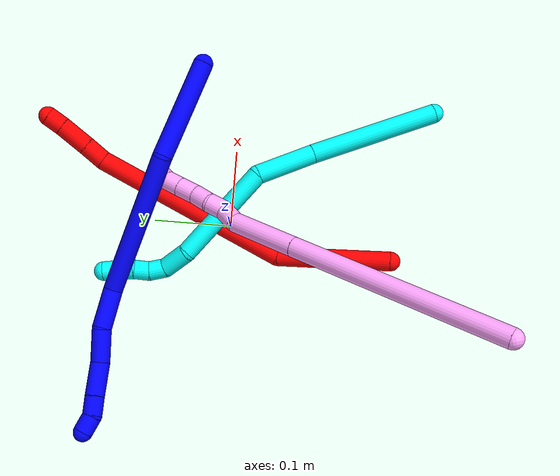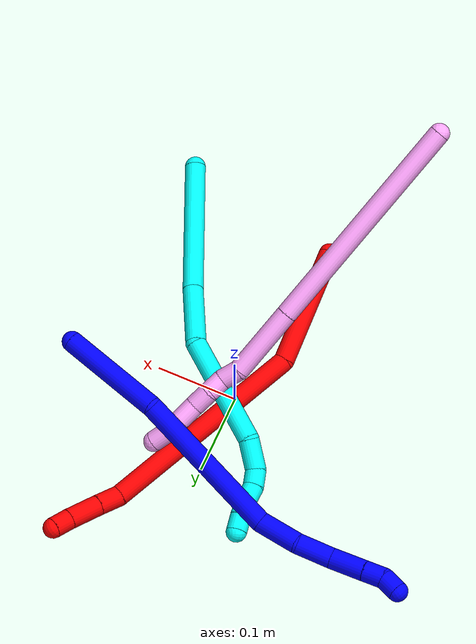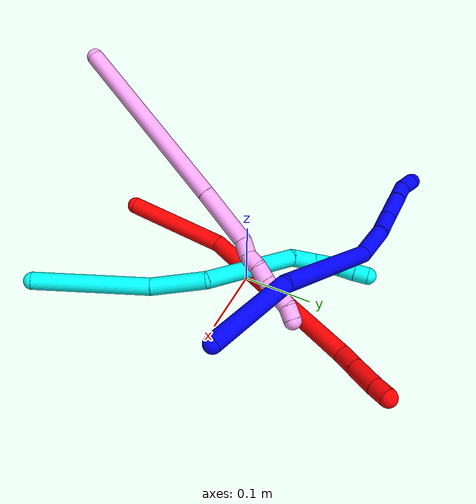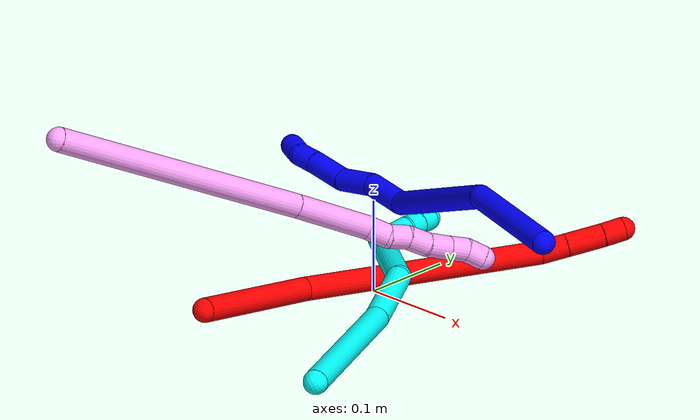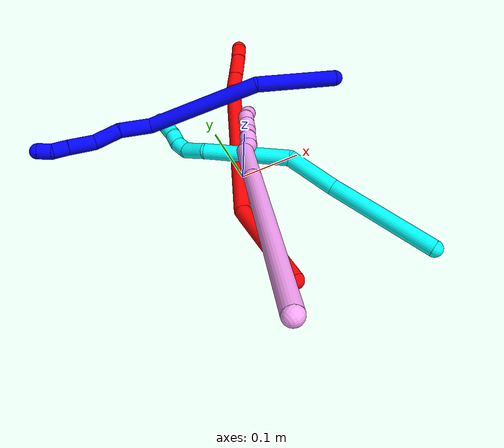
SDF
<sdf version="1.7">
 <world name="default">
  <plugin name="TubeGeneratorPlugin" filename="libtube_generator_plugin.so"/>
  <model name="photoneo_s_sensor">
   <static>1</static>
   <pose>0 0 2 1.57079 1.57079 3.14159</pose>
   <link name="link">
    <inertial><mass>0.1</mass></inertial>
    <sensor name="sensor" type="depth">
     <update_rate>30</update_rate>
     <camera>
      <horizontal_fov>1.22</horizontal_fov>
      <image><width>1920</width><height>1200</height><format>B8G8R8</format></image>
      <clip><near>0.1</near><far>4</far></clip>
      <depth_camera><output>points</output></depth_camera>
     </camera>
     <plugin name="camera_plugin" filename="libgazebo_ros_depth_camera.so">
      <baseline>0.2</baseline>
      <alwaysOn>1</alwaysOn>
      <updateRate>0.0</updateRate>
      <cameraName>camera_ir</cameraName>
      <imageTopicName>/camera/color/image_raw</imageTopicName>
      <cameraInfoTopicName>/camera/color/camera_info</cameraInfoTopicName>
      <depthImageTopicName>/camera/depth/image_raw</depthImageTopicName>
      <depthImageCameraInfoTopicName>/camera/depth/camera_info</depthImageCameraInfoTopicName>
      <pointCloudTopicName>/camera/depth/points</pointCloudTopicName>
      <frameName>fr_optical</frameName>
      <pointCloudCutoff>0.1</pointCloudCutoff>
      <pointCloudCutoffMax>2.0</pointCloudCutoffMax>
      <distortionK1>0</distortionK1>
      <distortionK2>0</distortionK2>
      <distortionK3>0</distortionK3>
      <distortionT1>0</distortionT1>
      <distortionT2>0</distortionT2>
      <CxPrime>0</CxPrime>
      <Cx>0</Cx>
      <Cy>0</Cy>
      <focalLength>0</focalLength>
      <hackBaseline>0</hackBaseline>
     </plugin>
    </sensor>
   </link>
  </model>
  <gravity>0 0 -9.8</gravity>
  <magnetic_field>6e-06 2.3e-05 -4.2e-05</magnetic_field>
  <atmosphere type="adiabatic"/>
  <physics name="default_physics" default="0" type="ode">
   <max_step_size>0.003</max_step_size>
   <real_time_factor>1</real_time_factor>
   <real_time_update_rate>1000</real_time_update_rate>
   <max_contacts>10000</max_contacts>
   <ode>
    <solver>
     <type>quick</type>
     <iters>100</iters>
     <sor>1.3</sor>
     <use_dynamic_moi_rescaling>0</use_dynamic_moi_rescaling>
    </solver>
    <constraints>
     <contact_max_correcting_vel>0</contact_max_correcting_vel>
     <contact_surface_layer>0.001</contact_surface_layer>
     <cfm>0</cfm>
     <erp>0.2</erp>
    </constraints>
   </ode>
  </physics>
  <scene><ambient>0.4 0.4 0.4 1</ambient><background>0.7 0.7 0.7 1</background><shadows>0</shadows></scene>
  <audio><device>default</device></audio>
  <spherical_coordinates>
   <surface_model>EARTH_WGS84</surface_model>
   <latitude_deg>0</latitude_deg>
   <longitude_deg>0</longitude_deg>
   <elevation>0</elevation>
   <heading_deg>0</heading_deg>
  </spherical_coordinates>
  <model name="bin">
   <static>1</static>
   <link name="bottom">
    <collision name="collision-bottom">
     <pose>0 0 -0.01 0 -0 0</pose>
     <geometry><box><size>0.8 0.6 0.02</size></box></geometry>
     <surface>
      <friction><ode><mu>100</mu><mu2>100</mu2></ode></friction>
      <contact><collide_bitmask>65535</collide_bitmask></contact>
     </surface>
    </collision>
   </link>
   <link name="west_wall">
    <collision name="collision-west_wall">
     <pose>-0.41 0 0.1 0 -0 0</pose>
     <geometry><box><size>0.02 0.6 0.2</size></box></geometry>
     <surface>
      <friction><ode><mu>100</mu><mu2>100</mu2></ode></friction>
      <contact><collide_bitmask>65535</collide_bitmask></contact>
     </surface>
    </collision>
   </link>
   <link name="east_wall">
    <collision name="collision-east_wall">
     <pose>0.41 0 0.1 0 -0 0</pose>
     <geometry><box><size>0.02 0.6 0.2</size></box></geometry>
     <surface>
      <friction><ode><mu>100</mu><mu2>100</mu2></ode></friction>
      <contact><collide_bitmask>65535</collide_bitmask></contact>
     </surface>
    </collision>
   </link>
   <link name="south_wall">
    <collision name="collision-south_wall">
     <pose>0 -0.31 0.1 0 -0 0</pose>
     <geometry><box><size>0.8 0.02 0.2</size></box></geometry>
     <surface>
      <friction><ode><mu>100</mu><mu2>100</mu2></ode></friction>
      <contact><collide_bitmask>65535</collide_bitmask></contact>
     </surface>
    </collision>
   </link>
   <link name="north_wall">
    <collision name="collision-north_wall">
     <pose>0 0.31 0.1 0 -0 0</pose>
     <geometry><box><size>0.8 0.02 0.2</size></box></geometry>
     <surface>
      <friction><ode><mu>100</mu><mu2>100</mu2></ode></friction>
      <contact><collide_bitmask>65535</collide_bitmask></contact>
     </surface>
    </collision>
   </link>
  </model>
  <model name="1">
   <static>0</static>
   <link name="1">
    <collision name="collision-cylinder-e_1_1_4">
     <pose>0.014006 0.039637 0.047901 -0.691278 0.221575 -0.080073</pose>
     <geometry><cylinder><radius>0.0125</radius><length>0.127465</length></cylinder></geometry>
     <surface>
      <friction><ode><mu>1.16</mu><mu2>1.16</mu2><slip1>0</slip1><slip2>0</slip2></ode></friction>
      <contact><ode><kp>1e+06</kp><kd>1</kd><max_vel>0</max_vel><min_depth>0.001</min_depth></ode></contact>
     </surface>
    </collision>
    <visual name="visual-cylinder-e_1_1_4">
     <pose>0.014006 0.039637 0.047901 -0.691278 0.221575 -0.080073</pose>
     <geometry><cylinder><radius>0.0125</radius><length>0.127465</length></cylinder></geometry>
     <material><ambient>0 0 1 1</ambient></material>
    </visual>
    <collision name="collision-cylinder-e_2_4_5">
     <pose>0.036307 0.106312 0.184655 -0.29539 0.089075 -0.013261</pose>
     <geometry><cylinder><radius>0.0125</radius><length>0.186491</length></cylinder></geometry>
     <surface>
      <friction><ode><mu>1.16</mu><mu2>1.16</mu2><slip1>0</slip1><slip2>0</slip2></ode></friction>
      <contact><ode><kp>1e+06</kp><kd>1</kd><max_vel>0</max_vel><min_depth>0.001</min_depth></ode></contact>
     </surface>
    </collision>
    <visual name="visual-cylinder-e_2_4_5">
     <pose>0.036307 0.106312 0.184655 -0.29539 0.089075 -0.013261</pose>
     <geometry><cylinder><radius>0.0125</radius><length>0.186491</length></cylinder></geometry>
     <material><ambient>0 0 1 1</ambient></material>
    </visual>
    <collision name="collision-cylinder-e_3_5_6">
     <pose>0.053965 0.149106 0.29185 -0.709753 0.369445 -0.138261</pose>
     <geometry><cylinder><radius>0.0125</radius><length>0.051859</length></cylinder></geometry>
     <surface>
      <friction><ode><mu>1.16</mu><mu2>1.16</mu2><slip1>0</slip1><slip2>0</slip2></ode></friction>
      <contact><ode><kp>1e+06</kp><kd>1</kd><max_vel>0</max_vel><min_depth>0.001</min_depth></ode></contact>
     </surface>
    </collision>
    <visual name="visual-cylinder-e_3_5_6">
     <pose>0.053965 0.149106 0.29185 -0.709753 0.369445 -0.138261</pose>
     <geometry><cylinder><radius>0.0125</radius><length>0.051859</length></cylinder></geometry>
     <material><ambient>0 0 1 1</ambient></material>
    </visual>
    <collision name="collision-cylinder-e_4_6_7">
     <pose>0.073806 0.172594 0.327675 -0.416336 0.501386 -0.108077</pose>
     <geometry><cylinder><radius>0.0125</radius><length>0.043601</length></cylinder></geometry>
     <surface>
      <friction><ode><mu>1.16</mu><mu2>1.16</mu2><slip1>0</slip1><slip2>0</slip2></ode></friction>
      <contact><ode><kp>1e+06</kp><kd>1</kd><max_vel>0</max_vel><min_depth>0.001</min_depth></ode></contact>
     </surface>
    </collision>
    <visual name="visual-cylinder-e_4_6_7">
     <pose>0.073806 0.172594 0.327675 -0.416336 0.501386 -0.108077</pose>
     <geometry><cylinder><radius>0.0125</radius><length>0.043601</length></cylinder></geometry>
     <material><ambient>0 0 1 1</ambient></material>
    </visual>
    <collision name="collision-cylinder-e_5_7_8">
     <pose>0.095123 0.193445 0.358667 -0.770816 0.522257 -0.215985</pose>
     <geometry><cylinder><radius>0.0125</radius><length>0.043454</length></cylinder></geometry>
     <surface>
      <friction><ode><mu>1.16</mu><mu2>1.16</mu2><slip1>0</slip1><slip2>0</slip2></ode></friction>
      <contact><ode><kp>1e+06</kp><kd>1</kd><max_vel>0</max_vel><min_depth>0.001</min_depth></ode></contact>
     </surface>
    </collision>
    <visual name="visual-cylinder-e_5_7_8">
     <pose>0.095123 0.193445 0.358667 -0.770816 0.522257 -0.215985</pose>
     <geometry><cylinder><radius>0.0125</radius><length>0.043454</length></cylinder></geometry>
     <material><ambient>0 0 1 1</ambient></material>
    </visual>
    <collision name="collision-cylinder-e_6_8_9">
     <pose>0.112228 0.21343 0.380219 -0.706518 0.535 -0.201429</pose>
     <geometry><cylinder><radius>0.0125</radius><length>0.024583</length></cylinder></geometry>
     <surface>
      <friction><ode><mu>1.16</mu><mu2>1.16</mu2><slip1>0</slip1><slip2>0</slip2></ode></friction>
      <contact><ode><kp>1e+06</kp><kd>1</kd><max_vel>0</max_vel><min_depth>0.001</min_depth></ode></contact>
     </surface>
    </collision>
    <visual name="visual-cylinder-e_6_8_9">
     <pose>0.112228 0.21343 0.380219 -0.706518 0.535 -0.201429</pose>
     <geometry><cylinder><radius>0.0125</radius><length>0.024583</length></cylinder></geometry>
     <material><ambient>0 0 1 1</ambient></material>
    </visual>
    <collision name="collision-cylinder-e_7_9_2">
     <pose>0.119942 0.228078 0.396287 -0.770072 0.128689 -0.052213</pose>
     <geometry><cylinder><radius>0.0125</radius><length>0.022547</length></cylinder></geometry>
     <surface>
      <friction><ode><mu>1.16</mu><mu2>1.16</mu2><slip1>0</slip1><slip2>0</slip2></ode></friction>
      <contact><ode><kp>1e+06</kp><kd>1</kd><max_vel>0</max_vel><min_depth>0.001</min_depth></ode></contact>
     </surface>
    </collision>
    <visual name="visual-cylinder-e_7_9_2">
     <pose>0.119942 0.228078 0.396287 -0.770072 0.128689 -0.052213</pose>
     <geometry><cylinder><radius>0.0125</radius><length>0.022547</length></cylinder></geometry>
     <material><ambient>0 0 1 1</ambient></material>
    </visual>
    <collision name="collision-sphere-2">
     <pose>0.121388 0.235861 0.404313 0 -0 0</pose>
     <geometry><sphere><radius>0.0125</radius></sphere></geometry>
     <surface>
      <friction><ode><mu>1.16</mu><mu2>1.16</mu2><slip1>0</slip1><slip2>0</slip2></ode></friction>
      <contact><ode><kp>1e+06</kp><kd>1</kd><max_vel>0</max_vel><min_depth>0.001</min_depth></ode></contact>
     </surface>
    </collision>
    <visual name="visual-sphere-2">
     <pose>0.121388 0.235861 0.404313 0 -0 0</pose>
     <geometry><sphere><radius>0.0125</radius></sphere></geometry>
     <material><ambient>0 0 1 1</ambient></material>
    </visual>
    <collision name="collision-sphere-9">
     <pose>0.118495 0.220294 0.388261 0 -0 0</pose>
     <geometry><sphere><radius>0.0125</radius></sphere></geometry>
     <surface>
      <friction><ode><mu>1.16</mu><mu2>1.16</mu2><slip1>0</slip1><slip2>0</slip2></ode></friction>
      <contact><ode><kp>1e+06</kp><kd>1</kd><max_vel>0</max_vel><min_depth>0.001</min_depth></ode></contact>
     </surface>
    </collision>
    <visual name="visual-sphere-9">
     <pose>0.118495 0.220294 0.388261 0 -0 0</pose>
     <geometry><sphere><radius>0.0125</radius></sphere></geometry>
     <material><ambient>0 0 1 1</ambient></material>
    </visual>
    <collision name="collision-sphere-4">
     <pose>0.028012 0.079275 0.095802 0 -0 0</pose>
     <geometry><sphere><radius>0.0125</radius></sphere></geometry>
     <surface>
      <friction><ode><mu>1.16</mu><mu2>1.16</mu2><slip1>0</slip1><slip2>0</slip2></ode></friction>
      <contact><ode><kp>1e+06</kp><kd>1</kd><max_vel>0</max_vel><min_depth>0.001</min_depth></ode></contact>
     </surface>
    </collision>
    <visual name="visual-sphere-4">
     <pose>0.028012 0.079275 0.095802 0 -0 0</pose>
     <geometry><sphere><radius>0.0125</radius></sphere></geometry>
     <material><ambient>0 0 1 1</ambient></material>
    </visual>
    <collision name="collision-sphere-1">
     <geometry><sphere><radius>0.0125</radius></sphere></geometry>
     <surface>
      <friction><ode><mu>1.16</mu><mu2>1.16</mu2><slip1>0</slip1><slip2>0</slip2></ode></friction>
      <contact><ode><kp>1e+06</kp><kd>1</kd><max_vel>0</max_vel><min_depth>0.001</min_depth></ode></contact>
     </surface>
    </collision>
    <visual name="visual-sphere-1">
     <geometry><sphere><radius>0.0125</radius></sphere></geometry>
     <material><ambient>0 0 1 1</ambient></material>
    </visual>
    <collision name="collision-sphere-8">
     <pose>0.105961 0.206565 0.372176 0 -0 0</pose>
     <geometry><sphere><radius>0.0125</radius></sphere></geometry>
     <surface>
      <friction><ode><mu>1.16</mu><mu2>1.16</mu2><slip1>0</slip1><slip2>0</slip2></ode></friction>
      <contact><ode><kp>1e+06</kp><kd>1</kd><max_vel>0</max_vel><min_depth>0.001</min_depth></ode></contact>
     </surface>
    </collision>
    <visual name="visual-sphere-8">
     <pose>0.105961 0.206565 0.372176 0 -0 0</pose>
     <geometry><sphere><radius>0.0125</radius></sphere></geometry>
     <material><ambient>0 0 1 1</ambient></material>
    </visual>
    <collision name="collision-sphere-5">
     <pose>0.044602 0.13335 0.273509 0 -0 0</pose>
     <geometry><sphere><radius>0.0125</radius></sphere></geometry>
     <surface>
      <friction><ode><mu>1.16</mu><mu2>1.16</mu2><slip1>0</slip1><slip2>0</slip2></ode></friction>
      <contact><ode><kp>1e+06</kp><kd>1</kd><max_vel>0</max_vel><min_depth>0.001</min_depth></ode></contact>
     </surface>
    </collision>
    <visual name="visual-sphere-5">
     <pose>0.044602 0.13335 0.273509 0 -0 0</pose>
     <geometry><sphere><radius>0.0125</radius></sphere></geometry>
     <material><ambient>0 0 1 1</ambient></material>
    </visual>
    <collision name="collision-sphere-6">
     <pose>0.063328 0.164863 0.310191 0 -0 0</pose>
     <geometry><sphere><radius>0.0125</radius></sphere></geometry>
     <surface>
      <friction><ode><mu>1.16</mu><mu2>1.16</mu2><slip1>0</slip1><slip2>0</slip2></ode></friction>
      <contact><ode><kp>1e+06</kp><kd>1</kd><max_vel>0</max_vel><min_depth>0.001</min_depth></ode></contact>
     </surface>
    </collision>
    <visual name="visual-sphere-6">
     <pose>0.063328 0.164863 0.310191 0 -0 0</pose>
     <geometry><sphere><radius>0.0125</radius></sphere></geometry>
     <material><ambient>0 0 1 1</ambient></material>
    </visual>
    <collision name="collision-sphere-7">
     <pose>0.084285 0.180326 0.345159 0 -0 0</pose>
     <geometry><sphere><radius>0.0125</radius></sphere></geometry>
     <surface>
      <friction><ode><mu>1.16</mu><mu2>1.16</mu2><slip1>0</slip1><slip2>0</slip2></ode></friction>
      <contact><ode><kp>1e+06</kp><kd>1</kd><max_vel>0</max_vel><min_depth>0.001</min_depth></ode></contact>
     </surface>
    </collision>
    <visual name="visual-sphere-7">
     <pose>0.084285 0.180326 0.345159 0 -0 0</pose>
     <geometry><sphere><radius>0.0125</radius></sphere></geometry>
     <material><ambient>0 0 1 1</ambient></material>
    </visual>
    <inertial>
     <pose>0.048339 0.117863 0.207664 0 -0 0</pose>
     <mass>0.5</mass>
     <inertia>
      <ixx>0.000733</ixx>
      <ixy>0</ixy>
      <ixz>0</ixz>
      <iyy>0.000684</iyy>
      <iyz>0</iyz>
      <izz>-0.000359</izz>
     </inertia>
    </inertial>
   </link>
   <pose>0.188513 0.047594 0.094356 2.29123 -0.262298 -2.10623</pose>
  </model>
  <model name="2">
   <static>0</static>
   <link name="2">
    <collision name="collision-cylinder-e_1_1_4">
     <pose>0.042387 0.040597 0.043641 -0.749277 0.61816 -0.249807</pose>
     <geometry><cylinder><radius>0.0125</radius><length>0.146277</length></cylinder></geometry>
     <surface>
      <friction><ode><mu>1.16</mu><mu2>1.16</mu2><slip1>0</slip1><slip2>0</slip2></ode></friction>
      <contact><ode><kp>1e+06</kp><kd>1</kd><max_vel>0</max_vel><min_depth>0.001</min_depth></ode></contact>
     </surface>
    </collision>
    <visual name="visual-cylinder-e_1_1_4">
     <pose>0.042387 0.040597 0.043641 -0.749277 0.61816 -0.249807</pose>
     <geometry><cylinder><radius>0.0125</radius><length>0.146277</length></cylinder></geometry>
     <material><ambient>1 0 0 1</ambient></material>
    </visual>
    <collision name="collision-cylinder-e_2_4_5">
     <pose>0.104029 0.167576 0.183945 -0.729294 0.147461 -0.056376</pose>
     <geometry><cylinder><radius>0.0125</radius><length>0.262119</length></cylinder></geometry>
     <surface>
      <friction><ode><mu>1.16</mu><mu2>1.16</mu2><slip1>0</slip1><slip2>0</slip2></ode></friction>
      <contact><ode><kp>1e+06</kp><kd>1</kd><max_vel>0</max_vel><min_depth>0.001</min_depth></ode></contact>
     </surface>
    </collision>
    <visual name="visual-cylinder-e_2_4_5">
     <pose>0.104029 0.167576 0.183945 -0.729294 0.147461 -0.056376</pose>
     <geometry><cylinder><radius>0.0125</radius><length>0.262119</length></cylinder></geometry>
     <material><ambient>1 0 0 1</ambient></material>
    </visual>
    <collision name="collision-cylinder-e_3_5_6">
     <pose>0.121722 0.264927 0.290112 -0.856842 -0.107319 0.049051</pose>
     <geometry><cylinder><radius>0.0125</radius><length>0.029193</length></cylinder></geometry>
     <surface>
      <friction><ode><mu>1.16</mu><mu2>1.16</mu2><slip1>0</slip1><slip2>0</slip2></ode></friction>
      <contact><ode><kp>1e+06</kp><kd>1</kd><max_vel>0</max_vel><min_depth>0.001</min_depth></ode></contact>
     </surface>
    </collision>
    <visual name="visual-cylinder-e_3_5_6">
     <pose>0.121722 0.264927 0.290112 -0.856842 -0.107319 0.049051</pose>
     <geometry><cylinder><radius>0.0125</radius><length>0.029193</length></cylinder></geometry>
     <material><ambient>1 0 0 1</ambient></material>
    </visual>
    <collision name="collision-cylinder-e_4_6_7">
     <pose>0.118457 0.290892 0.312572 -0.858223 -0.085655 0.03921</pose>
     <geometry><cylinder><radius>0.0125</radius><length>0.039782</length></cylinder></geometry>
     <surface>
      <friction><ode><mu>1.16</mu><mu2>1.16</mu2><slip1>0</slip1><slip2>0</slip2></ode></friction>
      <contact><ode><kp>1e+06</kp><kd>1</kd><max_vel>0</max_vel><min_depth>0.001</min_depth></ode></contact>
     </surface>
    </collision>
    <visual name="visual-cylinder-e_4_6_7">
     <pose>0.118457 0.290892 0.312572 -0.858223 -0.085655 0.03921</pose>
     <geometry><cylinder><radius>0.0125</radius><length>0.039782</length></cylinder></geometry>
     <material><ambient>1 0 0 1</ambient></material>
    </visual>
    <collision name="collision-cylinder-e_5_7_2">
     <pose>0.11642 0.314682 0.332639 -0.890849 -0.029585 0.014125</pose>
     <geometry><cylinder><radius>0.0125</radius><length>0.022629</length></cylinder></geometry>
     <surface>
      <friction><ode><mu>1.16</mu><mu2>1.16</mu2><slip1>0</slip1><slip2>0</slip2></ode></friction>
      <contact><ode><kp>1e+06</kp><kd>1</kd><max_vel>0</max_vel><min_depth>0.001</min_depth></ode></contact>
     </surface>
    </collision>
    <visual name="visual-cylinder-e_5_7_2">
     <pose>0.11642 0.314682 0.332639 -0.890849 -0.029585 0.014125</pose>
     <geometry><cylinder><radius>0.0125</radius><length>0.022629</length></cylinder></geometry>
     <material><ambient>1 0 0 1</ambient></material>
    </visual>
    <collision name="collision-sphere-2">
     <pose>0.116086 0.323476 0.33975 0 -0 0</pose>
     <geometry><sphere><radius>0.0125</radius></sphere></geometry>
     <surface>
      <friction><ode><mu>1.16</mu><mu2>1.16</mu2><slip1>0</slip1><slip2>0</slip2></ode></friction>
      <contact><ode><kp>1e+06</kp><kd>1</kd><max_vel>0</max_vel><min_depth>0.001</min_depth></ode></contact>
     </surface>
    </collision>
    <visual name="visual-sphere-2">
     <pose>0.116086 0.323476 0.33975 0 -0 0</pose>
     <geometry><sphere><radius>0.0125</radius></sphere></geometry>
     <material><ambient>1 0 0 1</ambient></material>
    </visual>
    <collision name="collision-sphere-7">
     <pose>0.116755 0.305888 0.325528 0 -0 0</pose>
     <geometry><sphere><radius>0.0125</radius></sphere></geometry>
     <surface>
      <friction><ode><mu>1.16</mu><mu2>1.16</mu2><slip1>0</slip1><slip2>0</slip2></ode></friction>
      <contact><ode><kp>1e+06</kp><kd>1</kd><max_vel>0</max_vel><min_depth>0.001</min_depth></ode></contact>
     </surface>
    </collision>
    <visual name="visual-sphere-7">
     <pose>0.116755 0.305888 0.325528 0 -0 0</pose>
     <geometry><sphere><radius>0.0125</radius></sphere></geometry>
     <material><ambient>1 0 0 1</ambient></material>
    </visual>
    <collision name="collision-sphere-6">
     <pose>0.120158 0.275896 0.299615 0 -0 0</pose>
     <geometry><sphere><radius>0.0125</radius></sphere></geometry>
     <surface>
      <friction><ode><mu>1.16</mu><mu2>1.16</mu2><slip1>0</slip1><slip2>0</slip2></ode></friction>
      <contact><ode><kp>1e+06</kp><kd>1</kd><max_vel>0</max_vel><min_depth>0.001</min_depth></ode></contact>
     </surface>
    </collision>
    <visual name="visual-sphere-6">
     <pose>0.120158 0.275896 0.299615 0 -0 0</pose>
     <geometry><sphere><radius>0.0125</radius></sphere></geometry>
     <material><ambient>1 0 0 1</ambient></material>
    </visual>
    <collision name="collision-sphere-5">
     <pose>0.123285 0.253959 0.280608 0 -0 0</pose>
     <geometry><sphere><radius>0.0125</radius></sphere></geometry>
     <surface>
      <friction><ode><mu>1.16</mu><mu2>1.16</mu2><slip1>0</slip1><slip2>0</slip2></ode></friction>
      <contact><ode><kp>1e+06</kp><kd>1</kd><max_vel>0</max_vel><min_depth>0.001</min_depth></ode></contact>
     </surface>
    </collision>
    <visual name="visual-sphere-5">
     <pose>0.123285 0.253959 0.280608 0 -0 0</pose>
     <geometry><sphere><radius>0.0125</radius></sphere></geometry>
     <material><ambient>1 0 0 1</ambient></material>
    </visual>
    <collision name="collision-sphere-1">
     <geometry><sphere><radius>0.0125</radius></sphere></geometry>
     <surface>
      <friction><ode><mu>1.16</mu><mu2>1.16</mu2><slip1>0</slip1><slip2>0</slip2></ode></friction>
      <contact><ode><kp>1e+06</kp><kd>1</kd><max_vel>0</max_vel><min_depth>0.001</min_depth></ode></contact>
     </surface>
    </collision>
    <visual name="visual-sphere-1">
     <geometry><sphere><radius>0.0125</radius></sphere></geometry>
     <material><ambient>1 0 0 1</ambient></material>
    </visual>
    <collision name="collision-sphere-4">
     <pose>0.084773 0.081194 0.087282 0 -0 0</pose>
     <geometry><sphere><radius>0.0125</radius></sphere></geometry>
     <surface>
      <friction><ode><mu>1.16</mu><mu2>1.16</mu2><slip1>0</slip1><slip2>0</slip2></ode></friction>
      <contact><ode><kp>1e+06</kp><kd>1</kd><max_vel>0</max_vel><min_depth>0.001</min_depth></ode></contact>
     </surface>
    </collision>
    <visual name="visual-sphere-4">
     <pose>0.084773 0.081194 0.087282 0 -0 0</pose>
     <geometry><sphere><radius>0.0125</radius></sphere></geometry>
     <material><ambient>1 0 0 1</ambient></material>
    </visual>
    <inertial>
     <pose>0.088737 0.152581 0.166061 0 -0 0</pose>
     <mass>0.5</mass>
     <inertia>
      <ixx>0.001586</ixx>
      <ixy>0</ixy>
      <ixz>0</ixz>
      <iyy>0.001244</iyy>
      <iyz>0</iyz>
      <izz>-0.001502</izz>
     </inertia>
    </inertial>
   </link>
   <pose>-0.0321 -0.209436 0.033867 2.24151 0.375362 2.55907</pose>
  </model>
  <model name="3">
   <static>0</static>
   <link name="3">
    <collision name="collision-cylinder-e_1_1_4">
     <pose>-0.052401 0.06097 -0.022606 -1.92585 -0.678297 0.938535</pose>
     <geometry><cylinder><radius>0.0125</radius><length>0.167024</length></cylinder></geometry>
     <surface>
      <friction><ode><mu>1.16</mu><mu2>1.16</mu2><slip1>0</slip1><slip2>0</slip2></ode></friction>
      <contact><ode><kp>1e+06</kp><kd>1</kd><max_vel>0</max_vel><min_depth>0.001</min_depth></ode></contact>
     </surface>
    </collision>
    <visual name="visual-cylinder-e_1_1_4">
     <pose>-0.052401 0.06097 -0.022606 -1.92585 -0.678297 0.938535</pose>
     <geometry><cylinder><radius>0.0125</radius><length>0.167024</length></cylinder></geometry>
     <material><ambient>0.003922 1 0.996078 1</ambient></material>
    </visual>
    <collision name="collision-cylinder-e_2_4_5">
     <pose>-0.123476 0.154497 -0.057041 -1.91932 -0.494427 0.691501</pose>
     <geometry><cylinder><radius>0.0125</radius><length>0.078704</length></cylinder></geometry>
     <surface>
      <friction><ode><mu>1.16</mu><mu2>1.16</mu2><slip1>0</slip1><slip2>0</slip2></ode></friction>
      <contact><ode><kp>1e+06</kp><kd>1</kd><max_vel>0</max_vel><min_depth>0.001</min_depth></ode></contact>
     </surface>
    </collision>
    <visual name="visual-cylinder-e_2_4_5">
     <pose>-0.123476 0.154497 -0.057041 -1.91932 -0.494427 0.691501</pose>
     <geometry><cylinder><radius>0.0125</radius><length>0.078704</length></cylinder></geometry>
     <material><ambient>0.003922 1 0.996078 1</ambient></material>
    </visual>
    <collision name="collision-cylinder-e_3_5_6">
     <pose>-0.176167 0.243646 -0.055038 -1.33107 -0.528515 0.418604</pose>
     <geometry><cylinder><radius>0.0125</radius><length>0.134924</length></cylinder></geometry>
     <surface>
      <friction><ode><mu>1.16</mu><mu2>1.16</mu2><slip1>0</slip1><slip2>0</slip2></ode></friction>
      <contact><ode><kp>1e+06</kp><kd>1</kd><max_vel>0</max_vel><min_depth>0.001</min_depth></ode></contact>
     </surface>
    </collision>
    <visual name="visual-cylinder-e_3_5_6">
     <pose>-0.176167 0.243646 -0.055038 -1.33107 -0.528515 0.418604</pose>
     <geometry><cylinder><radius>0.0125</radius><length>0.134924</length></cylinder></geometry>
     <material><ambient>0.003922 1 0.996078 1</ambient></material>
    </visual>
    <collision name="collision-cylinder-e_4_6_7">
     <pose>-0.225126 0.311242 -0.038323 -1.31465 -0.920014 0.730495</pose>
     <geometry><cylinder><radius>0.0125</radius><length>0.037557</length></cylinder></geometry>
     <surface>
      <friction><ode><mu>1.16</mu><mu2>1.16</mu2><slip1>0</slip1><slip2>0</slip2></ode></friction>
      <contact><ode><kp>1e+06</kp><kd>1</kd><max_vel>0</max_vel><min_depth>0.001</min_depth></ode></contact>
     </surface>
    </collision>
    <visual name="visual-cylinder-e_4_6_7">
     <pose>-0.225126 0.311242 -0.038323 -1.31465 -0.920014 0.730495</pose>
     <geometry><cylinder><radius>0.0125</radius><length>0.037557</length></cylinder></geometry>
     <material><ambient>0.003922 1 0.996078 1</ambient></material>
    </visual>
    <collision name="collision-cylinder-e_5_7_8">
     <pose>-0.24767 0.328964 -0.039127 -2.07269 -0.781595 1.21611</pose>
     <geometry><cylinder><radius>0.0125</radius><length>0.021588</length></cylinder></geometry>
     <surface>
      <friction><ode><mu>1.16</mu><mu2>1.16</mu2><slip1>0</slip1><slip2>0</slip2></ode></friction>
      <contact><ode><kp>1e+06</kp><kd>1</kd><max_vel>0</max_vel><min_depth>0.001</min_depth></ode></contact>
     </surface>
    </collision>
    <visual name="visual-cylinder-e_5_7_8">
     <pose>-0.24767 0.328964 -0.039127 -2.07269 -0.781595 1.21611</pose>
     <geometry><cylinder><radius>0.0125</radius><length>0.021588</length></cylinder></geometry>
     <material><ambient>0.003922 1 0.996078 1</ambient></material>
    </visual>
    <collision name="collision-cylinder-e_6_8_9">
     <pose>-0.261077 0.340682 -0.049272 -2.48269 -0.617628 1.50156</pose>
     <geometry><cylinder><radius>0.0125</radius><length>0.020042</length></cylinder></geometry>
     <surface>
      <friction><ode><mu>1.16</mu><mu2>1.16</mu2><slip1>0</slip1><slip2>0</slip2></ode></friction>
      <contact><ode><kp>1e+06</kp><kd>1</kd><max_vel>0</max_vel><min_depth>0.001</min_depth></ode></contact>
     </surface>
    </collision>
    <visual name="visual-cylinder-e_6_8_9">
     <pose>-0.261077 0.340682 -0.049272 -2.48269 -0.617628 1.50156</pose>
     <geometry><cylinder><radius>0.0125</radius><length>0.020042</length></cylinder></geometry>
     <material><ambient>0.003922 1 0.996078 1</ambient></material>
    </visual>
    <collision name="collision-cylinder-e_7_9_10">
     <pose>-0.274108 0.350813 -0.060472 -2.31685 -0.802574 1.5403</pose>
     <geometry><cylinder><radius>0.0125</radius><length>0.020101</length></cylinder></geometry>
     <surface>
      <friction><ode><mu>1.16</mu><mu2>1.16</mu2><slip1>0</slip1><slip2>0</slip2></ode></friction>
      <contact><ode><kp>1e+06</kp><kd>1</kd><max_vel>0</max_vel><min_depth>0.001</min_depth></ode></contact>
     </surface>
    </collision>
    <visual name="visual-cylinder-e_7_9_10">
     <pose>-0.274108 0.350813 -0.060472 -2.31685 -0.802574 1.5403</pose>
     <geometry><cylinder><radius>0.0125</radius><length>0.020101</length></cylinder></geometry>
     <material><ambient>0.003922 1 0.996078 1</ambient></material>
    </visual>
    <collision name="collision-cylinder-e_8_10_2">
     <pose>-0.288371 0.361592 -0.069589 -2.22987 -0.777543 1.39196</pose>
     <geometry><cylinder><radius>0.0125</radius><length>0.020058</length></cylinder></geometry>
     <surface>
      <friction><ode><mu>1.16</mu><mu2>1.16</mu2><slip1>0</slip1><slip2>0</slip2></ode></friction>
      <contact><ode><kp>1e+06</kp><kd>1</kd><max_vel>0</max_vel><min_depth>0.001</min_depth></ode></contact>
     </surface>
    </collision>
    <visual name="visual-cylinder-e_8_10_2">
     <pose>-0.288371 0.361592 -0.069589 -2.22987 -0.777543 1.39196</pose>
     <geometry><cylinder><radius>0.0125</radius><length>0.020058</length></cylinder></geometry>
     <material><ambient>0.003922 1 0.996078 1</ambient></material>
    </visual>
    <collision name="collision-sphere-2">
     <pose>-0.295407 0.367242 -0.073966 0 -0 0</pose>
     <geometry><sphere><radius>0.0125</radius></sphere></geometry>
     <surface>
      <friction><ode><mu>1.16</mu><mu2>1.16</mu2><slip1>0</slip1><slip2>0</slip2></ode></friction>
      <contact><ode><kp>1e+06</kp><kd>1</kd><max_vel>0</max_vel><min_depth>0.001</min_depth></ode></contact>
     </surface>
    </collision>
    <visual name="visual-sphere-2">
     <pose>-0.295407 0.367242 -0.073966 0 -0 0</pose>
     <geometry><sphere><radius>0.0125</radius></sphere></geometry>
     <material><ambient>0.003922 1 0.996078 1</ambient></material>
    </visual>
    <collision name="collision-sphere-10">
     <pose>-0.281336 0.355942 -0.065212 0 -0 0</pose>
     <geometry><sphere><radius>0.0125</radius></sphere></geometry>
     <surface>
      <friction><ode><mu>1.16</mu><mu2>1.16</mu2><slip1>0</slip1><slip2>0</slip2></ode></friction>
      <contact><ode><kp>1e+06</kp><kd>1</kd><max_vel>0</max_vel><min_depth>0.001</min_depth></ode></contact>
     </surface>
    </collision>
    <visual name="visual-sphere-10">
     <pose>-0.281336 0.355942 -0.065212 0 -0 0</pose>
     <geometry><sphere><radius>0.0125</radius></sphere></geometry>
     <material><ambient>0.003922 1 0.996078 1</ambient></material>
    </visual>
    <collision name="collision-sphere-9">
     <pose>-0.26688 0.345684 -0.055732 0 -0 0</pose>
     <geometry><sphere><radius>0.0125</radius></sphere></geometry>
     <surface>
      <friction><ode><mu>1.16</mu><mu2>1.16</mu2><slip1>0</slip1><slip2>0</slip2></ode></friction>
      <contact><ode><kp>1e+06</kp><kd>1</kd><max_vel>0</max_vel><min_depth>0.001</min_depth></ode></contact>
     </surface>
    </collision>
    <visual name="visual-sphere-9">
     <pose>-0.26688 0.345684 -0.055732 0 -0 0</pose>
     <geometry><sphere><radius>0.0125</radius></sphere></geometry>
     <material><ambient>0.003922 1 0.996078 1</ambient></material>
    </visual>
    <collision name="collision-sphere-4">
     <pose>-0.104802 0.12194 -0.045211 0 -0 0</pose>
     <geometry><sphere><radius>0.0125</radius></sphere></geometry>
     <surface>
      <friction><ode><mu>1.16</mu><mu2>1.16</mu2><slip1>0</slip1><slip2>0</slip2></ode></friction>
      <contact><ode><kp>1e+06</kp><kd>1</kd><max_vel>0</max_vel><min_depth>0.001</min_depth></ode></contact>
     </surface>
    </collision>
    <visual name="visual-sphere-4">
     <pose>-0.104802 0.12194 -0.045211 0 -0 0</pose>
     <geometry><sphere><radius>0.0125</radius></sphere></geometry>
     <material><ambient>0.003922 1 0.996078 1</ambient></material>
    </visual>
    <collision name="collision-sphere-1">
     <geometry><sphere><radius>0.0125</radius></sphere></geometry>
     <surface>
      <friction><ode><mu>1.16</mu><mu2>1.16</mu2><slip1>0</slip1><slip2>0</slip2></ode></friction>
      <contact><ode><kp>1e+06</kp><kd>1</kd><max_vel>0</max_vel><min_depth>0.001</min_depth></ode></contact>
     </surface>
    </collision>
    <visual name="visual-sphere-1">
     <geometry><sphere><radius>0.0125</radius></sphere></geometry>
     <material><ambient>0.003922 1 0.996078 1</ambient></material>
    </visual>
    <collision name="collision-sphere-8">
     <pose>-0.255273 0.33568 -0.042813 0 -0 0</pose>
     <geometry><sphere><radius>0.0125</radius></sphere></geometry>
     <surface>
      <friction><ode><mu>1.16</mu><mu2>1.16</mu2><slip1>0</slip1><slip2>0</slip2></ode></friction>
      <contact><ode><kp>1e+06</kp><kd>1</kd><max_vel>0</max_vel><min_depth>0.001</min_depth></ode></contact>
     </surface>
    </collision>
    <visual name="visual-sphere-8">
     <pose>-0.255273 0.33568 -0.042813 0 -0 0</pose>
     <geometry><sphere><radius>0.0125</radius></sphere></geometry>
     <material><ambient>0.003922 1 0.996078 1</ambient></material>
    </visual>
    <collision name="collision-sphere-5">
     <pose>-0.14215 0.187054 -0.068871 0 -0 0</pose>
     <geometry><sphere><radius>0.0125</radius></sphere></geometry>
     <surface>
      <friction><ode><mu>1.16</mu><mu2>1.16</mu2><slip1>0</slip1><slip2>0</slip2></ode></friction>
      <contact><ode><kp>1e+06</kp><kd>1</kd><max_vel>0</max_vel><min_depth>0.001</min_depth></ode></contact>
     </surface>
    </collision>
    <visual name="visual-sphere-5">
     <pose>-0.14215 0.187054 -0.068871 0 -0 0</pose>
     <geometry><sphere><radius>0.0125</radius></sphere></geometry>
     <material><ambient>0.003922 1 0.996078 1</ambient></material>
    </visual>
    <collision name="collision-sphere-6">
     <pose>-0.210185 0.300237 -0.041206 0 -0 0</pose>
     <geometry><sphere><radius>0.0125</radius></sphere></geometry>
     <surface>
      <friction><ode><mu>1.16</mu><mu2>1.16</mu2><slip1>0</slip1><slip2>0</slip2></ode></friction>
      <contact><ode><kp>1e+06</kp><kd>1</kd><max_vel>0</max_vel><min_depth>0.001</min_depth></ode></contact>
     </surface>
    </collision>
    <visual name="visual-sphere-6">
     <pose>-0.210185 0.300237 -0.041206 0 -0 0</pose>
     <geometry><sphere><radius>0.0125</radius></sphere></geometry>
     <material><ambient>0.003922 1 0.996078 1</ambient></material>
    </visual>
    <collision name="collision-sphere-7">
     <pose>-0.240066 0.322247 -0.035441 0 -0 0</pose>
     <geometry><sphere><radius>0.0125</radius></sphere></geometry>
     <surface>
      <friction><ode><mu>1.16</mu><mu2>1.16</mu2><slip1>0</slip1><slip2>0</slip2></ode></friction>
      <contact><ode><kp>1e+06</kp><kd>1</kd><max_vel>0</max_vel><min_depth>0.001</min_depth></ode></contact>
     </surface>
    </collision>
    <visual name="visual-sphere-7">
     <pose>-0.240066 0.322247 -0.035441 0 -0 0</pose>
     <geometry><sphere><radius>0.0125</radius></sphere></geometry>
     <material><ambient>0.003922 1 0.996078 1</ambient></material>
    </visual>
    <inertial>
     <pose>-0.145136 0.190281 -0.043148 0 -0 0</pose>
     <mass>0.5</mass>
     <inertia>
      <ixx>0.00071</ixx>
      <ixy>0</ixy>
      <ixz>0</ixz>
      <iyy>0.000583</iyy>
      <iyz>0</iyz>
      <izz>-0.00013</izz>
     </inertia>
    </inertial>
   </link>
   <pose>0.165862 -0.252686 0.032201 2.4225 -0.835935 -1.54313</pose>
  </model>
  <model name="4">
   <static>0</static>
   <link name="4">
    <collision name="collision-cylinder-e_1_1_4">
     <pose>0.053448 0.101385 -0.07877 -2.23132 0.394479 -0.775325</pose>
     <geometry><cylinder><radius>0.0125</radius><length>0.278138</length></cylinder></geometry>
     <surface>
      <friction><ode><mu>1.16</mu><mu2>1.16</mu2><slip1>0</slip1><slip2>0</slip2></ode></friction>
      <contact><ode><kp>1e+06</kp><kd>1</kd><max_vel>0</max_vel><min_depth>0.001</min_depth></ode></contact>
     </surface>
    </collision>
    <visual name="visual-cylinder-e_1_1_4">
     <pose>0.053448 0.101385 -0.07877 -2.23132 0.394479 -0.775325</pose>
     <geometry><cylinder><radius>0.0125</radius><length>0.278138</length></cylinder></geometry>
     <material><ambient>1 0.65098 0.996078 1</ambient></material>
    </visual>
    <collision name="collision-cylinder-e_2_4_5">
     <pose>0.122882 0.234995 -0.182342 -2.22675 0.374557 -0.734969</pose>
     <geometry><cylinder><radius>0.0125</radius><length>0.087388</length></cylinder></geometry>
     <surface>
      <friction><ode><mu>1.16</mu><mu2>1.16</mu2><slip1>0</slip1><slip2>0</slip2></ode></friction>
      <contact><ode><kp>1e+06</kp><kd>1</kd><max_vel>0</max_vel><min_depth>0.001</min_depth></ode></contact>
     </surface>
    </collision>
    <visual name="visual-cylinder-e_2_4_5">
     <pose>0.122882 0.234995 -0.182342 -2.22675 0.374557 -0.734969</pose>
     <geometry><cylinder><radius>0.0125</radius><length>0.087388</length></cylinder></geometry>
     <material><ambient>1 0.65098 0.996078 1</ambient></material>
    </visual>
    <collision name="collision-cylinder-e_3_5_6">
     <pose>0.140489 0.274042 -0.21668 -2.52067 0.137367 -0.42243</pose>
     <geometry><cylinder><radius>0.0125</radius><length>0.023673</length></cylinder></geometry>
     <surface>
      <friction><ode><mu>1.16</mu><mu2>1.16</mu2><slip1>0</slip1><slip2>0</slip2></ode></friction>
      <contact><ode><kp>1e+06</kp><kd>1</kd><max_vel>0</max_vel><min_depth>0.001</min_depth></ode></contact>
     </surface>
    </collision>
    <visual name="visual-cylinder-e_3_5_6">
     <pose>0.140489 0.274042 -0.21668 -2.52067 0.137367 -0.42243</pose>
     <geometry><cylinder><radius>0.0125</radius><length>0.023673</length></cylinder></geometry>
     <material><ambient>1 0.65098 0.996078 1</ambient></material>
    </visual>
    <collision name="collision-cylinder-e_4_6_7">
     <pose>0.147797 0.286968 -0.233203 -2.42348 0.54997 -1.28918</pose>
     <geometry><cylinder><radius>0.0125</radius><length>0.021765</length></cylinder></geometry>
     <surface>
      <friction><ode><mu>1.16</mu><mu2>1.16</mu2><slip1>0</slip1><slip2>0</slip2></ode></friction>
      <contact><ode><kp>1e+06</kp><kd>1</kd><max_vel>0</max_vel><min_depth>0.001</min_depth></ode></contact>
     </surface>
    </collision>
    <visual name="visual-cylinder-e_4_6_7">
     <pose>0.147797 0.286968 -0.233203 -2.42348 0.54997 -1.28918</pose>
     <geometry><cylinder><radius>0.0125</radius><length>0.021765</length></cylinder></geometry>
     <material><ambient>1 0.65098 0.996078 1</ambient></material>
    </visual>
    <collision name="collision-cylinder-e_5_7_8">
     <pose>0.156738 0.301418 -0.247975 -2.32145 0.277605 -0.621877</pose>
     <geometry><cylinder><radius>0.0125</radius><length>0.023736</length></cylinder></geometry>
     <surface>
      <friction><ode><mu>1.16</mu><mu2>1.16</mu2><slip1>0</slip1><slip2>0</slip2></ode></friction>
      <contact><ode><kp>1e+06</kp><kd>1</kd><max_vel>0</max_vel><min_depth>0.001</min_depth></ode></contact>
     </surface>
    </collision>
    <visual name="visual-cylinder-e_5_7_8">
     <pose>0.156738 0.301418 -0.247975 -2.32145 0.277605 -0.621877</pose>
     <geometry><cylinder><radius>0.0125</radius><length>0.023736</length></cylinder></geometry>
     <material><ambient>1 0.65098 0.996078 1</ambient></material>
    </visual>
    <collision name="collision-cylinder-e_6_8_9">
     <pose>0.165555 0.317585 -0.263485 -2.35004 0.46866 -1.03814</pose>
     <geometry><cylinder><radius>0.0125</radius><length>0.02464</length></cylinder></geometry>
     <surface>
      <friction><ode><mu>1.16</mu><mu2>1.16</mu2><slip1>0</slip1><slip2>0</slip2></ode></friction>
      <contact><ode><kp>1e+06</kp><kd>1</kd><max_vel>0</max_vel><min_depth>0.001</min_depth></ode></contact>
     </surface>
    </collision>
    <visual name="visual-cylinder-e_6_8_9">
     <pose>0.165555 0.317585 -0.263485 -2.35004 0.46866 -1.03814</pose>
     <geometry><cylinder><radius>0.0125</radius><length>0.02464</length></cylinder></geometry>
     <material><ambient>1 0.65098 0.996078 1</ambient></material>
    </visual>
    <collision name="collision-cylinder-e_7_9_10">
     <pose>0.175985 0.331598 -0.277886 -2.39372 0.490683 -1.13592</pose>
     <geometry><cylinder><radius>0.0125</radius><length>0.02065</length></cylinder></geometry>
     <surface>
      <friction><ode><mu>1.16</mu><mu2>1.16</mu2><slip1>0</slip1><slip2>0</slip2></ode></friction>
      <contact><ode><kp>1e+06</kp><kd>1</kd><max_vel>0</max_vel><min_depth>0.001</min_depth></ode></contact>
     </surface>
    </collision>
    <visual name="visual-cylinder-e_7_9_10">
     <pose>0.175985 0.331598 -0.277886 -2.39372 0.490683 -1.13592</pose>
     <geometry><cylinder><radius>0.0125</radius><length>0.02065</length></cylinder></geometry>
     <material><ambient>1 0.65098 0.996078 1</ambient></material>
    </visual>
    <collision name="collision-cylinder-e_8_10_2">
     <pose>0.182214 0.344164 -0.292153 -2.44323 0.136622 -0.371482</pose>
     <geometry><cylinder><radius>0.0125</radius><length>0.020009</length></cylinder></geometry>
     <surface>
      <friction><ode><mu>1.16</mu><mu2>1.16</mu2><slip1>0</slip1><slip2>0</slip2></ode></friction>
      <contact><ode><kp>1e+06</kp><kd>1</kd><max_vel>0</max_vel><min_depth>0.001</min_depth></ode></contact>
     </surface>
    </collision>
    <visual name="visual-cylinder-e_8_10_2">
     <pose>0.182214 0.344164 -0.292153 -2.44323 0.136622 -0.371482</pose>
     <geometry><cylinder><radius>0.0125</radius><length>0.020009</length></cylinder></geometry>
     <material><ambient>1 0.65098 0.996078 1</ambient></material>
    </visual>
    <collision name="collision-sphere-2">
     <pose>0.183576 0.350537 -0.299744 0 -0 0</pose>
     <geometry><sphere><radius>0.0125</radius></sphere></geometry>
     <surface>
      <friction><ode><mu>1.16</mu><mu2>1.16</mu2><slip1>0</slip1><slip2>0</slip2></ode></friction>
      <contact><ode><kp>1e+06</kp><kd>1</kd><max_vel>0</max_vel><min_depth>0.001</min_depth></ode></contact>
     </surface>
    </collision>
    <visual name="visual-sphere-2">
     <pose>0.183576 0.350537 -0.299744 0 -0 0</pose>
     <geometry><sphere><radius>0.0125</radius></sphere></geometry>
     <material><ambient>1 0.65098 0.996078 1</ambient></material>
    </visual>
    <collision name="collision-sphere-10">
     <pose>0.180851 0.337791 -0.284563 0 -0 0</pose>
     <geometry><sphere><radius>0.0125</radius></sphere></geometry>
     <surface>
      <friction><ode><mu>1.16</mu><mu2>1.16</mu2><slip1>0</slip1><slip2>0</slip2></ode></friction>
      <contact><ode><kp>1e+06</kp><kd>1</kd><max_vel>0</max_vel><min_depth>0.001</min_depth></ode></contact>
     </surface>
    </collision>
    <visual name="visual-sphere-10">
     <pose>0.180851 0.337791 -0.284563 0 -0 0</pose>
     <geometry><sphere><radius>0.0125</radius></sphere></geometry>
     <material><ambient>1 0.65098 0.996078 1</ambient></material>
    </visual>
    <collision name="collision-sphere-9">
     <pose>0.17112 0.325404 -0.271209 0 -0 0</pose>
     <geometry><sphere><radius>0.0125</radius></sphere></geometry>
     <surface>
      <friction><ode><mu>1.16</mu><mu2>1.16</mu2><slip1>0</slip1><slip2>0</slip2></ode></friction>
      <contact><ode><kp>1e+06</kp><kd>1</kd><max_vel>0</max_vel><min_depth>0.001</min_depth></ode></contact>
     </surface>
    </collision>
    <visual name="visual-sphere-9">
     <pose>0.17112 0.325404 -0.271209 0 -0 0</pose>
     <geometry><sphere><radius>0.0125</radius></sphere></geometry>
     <material><ambient>1 0.65098 0.996078 1</ambient></material>
    </visual>
    <collision name="collision-sphere-4">
     <pose>0.106896 0.202769 -0.157539 0 -0 0</pose>
     <geometry><sphere><radius>0.0125</radius></sphere></geometry>
     <surface>
      <friction><ode><mu>1.16</mu><mu2>1.16</mu2><slip1>0</slip1><slip2>0</slip2></ode></friction>
      <contact><ode><kp>1e+06</kp><kd>1</kd><max_vel>0</max_vel><min_depth>0.001</min_depth></ode></contact>
     </surface>
    </collision>
    <visual name="visual-sphere-4">
     <pose>0.106896 0.202769 -0.157539 0 -0 0</pose>
     <geometry><sphere><radius>0.0125</radius></sphere></geometry>
     <material><ambient>1 0.65098 0.996078 1</ambient></material>
    </visual>
    <collision name="collision-sphere-1">
     <geometry><sphere><radius>0.0125</radius></sphere></geometry>
     <surface>
      <friction><ode><mu>1.16</mu><mu2>1.16</mu2><slip1>0</slip1><slip2>0</slip2></ode></friction>
      <contact><ode><kp>1e+06</kp><kd>1</kd><max_vel>0</max_vel><min_depth>0.001</min_depth></ode></contact>
     </surface>
    </collision>
    <visual name="visual-sphere-1">
     <geometry><sphere><radius>0.0125</radius></sphere></geometry>
     <material><ambient>1 0.65098 0.996078 1</ambient></material>
    </visual>
    <collision name="collision-sphere-8">
     <pose>0.15999 0.309765 -0.255761 0 -0 0</pose>
     <geometry><sphere><radius>0.0125</radius></sphere></geometry>
     <surface>
      <friction><ode><mu>1.16</mu><mu2>1.16</mu2><slip1>0</slip1><slip2>0</slip2></ode></friction>
      <contact><ode><kp>1e+06</kp><kd>1</kd><max_vel>0</max_vel><min_depth>0.001</min_depth></ode></contact>
     </surface>
    </collision>
    <visual name="visual-sphere-8">
     <pose>0.15999 0.309765 -0.255761 0 -0 0</pose>
     <geometry><sphere><radius>0.0125</radius></sphere></geometry>
     <material><ambient>1 0.65098 0.996078 1</ambient></material>
    </visual>
    <collision name="collision-sphere-5">
     <pose>0.138868 0.26722 -0.207144 0 -0 0</pose>
     <geometry><sphere><radius>0.0125</radius></sphere></geometry>
     <surface>
      <friction><ode><mu>1.16</mu><mu2>1.16</mu2><slip1>0</slip1><slip2>0</slip2></ode></friction>
      <contact><ode><kp>1e+06</kp><kd>1</kd><max_vel>0</max_vel><min_depth>0.001</min_depth></ode></contact>
     </surface>
    </collision>
    <visual name="visual-sphere-5">
     <pose>0.138868 0.26722 -0.207144 0 -0 0</pose>
     <geometry><sphere><radius>0.0125</radius></sphere></geometry>
     <material><ambient>1 0.65098 0.996078 1</ambient></material>
    </visual>
    <collision name="collision-sphere-6">
     <pose>0.14211 0.280863 -0.226216 0 -0 0</pose>
     <geometry><sphere><radius>0.0125</radius></sphere></geometry>
     <surface>
      <friction><ode><mu>1.16</mu><mu2>1.16</mu2><slip1>0</slip1><slip2>0</slip2></ode></friction>
      <contact><ode><kp>1e+06</kp><kd>1</kd><max_vel>0</max_vel><min_depth>0.001</min_depth></ode></contact>
     </surface>
    </collision>
    <visual name="visual-sphere-6">
     <pose>0.14211 0.280863 -0.226216 0 -0 0</pose>
     <geometry><sphere><radius>0.0125</radius></sphere></geometry>
     <material><ambient>1 0.65098 0.996078 1</ambient></material>
    </visual>
    <collision name="collision-sphere-7">
     <pose>0.153485 0.293072 -0.240189 0 -0 0</pose>
     <geometry><sphere><radius>0.0125</radius></sphere></geometry>
     <surface>
      <friction><ode><mu>1.16</mu><mu2>1.16</mu2><slip1>0</slip1><slip2>0</slip2></ode></friction>
      <contact><ode><kp>1e+06</kp><kd>1</kd><max_vel>0</max_vel><min_depth>0.001</min_depth></ode></contact>
     </surface>
    </collision>
    <visual name="visual-sphere-7">
     <pose>0.153485 0.293072 -0.240189 0 -0 0</pose>
     <geometry><sphere><radius>0.0125</radius></sphere></geometry>
     <material><ambient>1 0.65098 0.996078 1</ambient></material>
    </visual>
    <inertial>
     <pose>0.094453 0.180364 -0.144022 0 -0 0</pose>
     <mass>0.5</mass>
     <inertia>
      <ixx>4.2e-05</ixx>
      <ixy>0</ixy>
      <ixz>0</ixz>
      <iyy>-0.001608</iyy>
      <iyz>0</iyz>
      <izz>-0.002107</izz>
     </inertia>
    </inertial>
   </link>
   <pose>-0.120816 -0.318635 0.222763 -1.53062 -0.59328 1.83705</pose>
  </model>
 </world>
</sdf>
